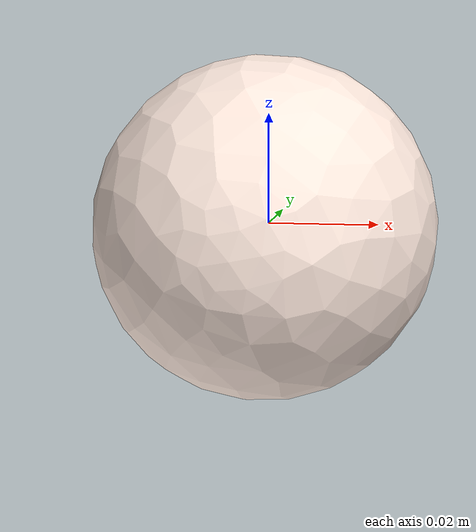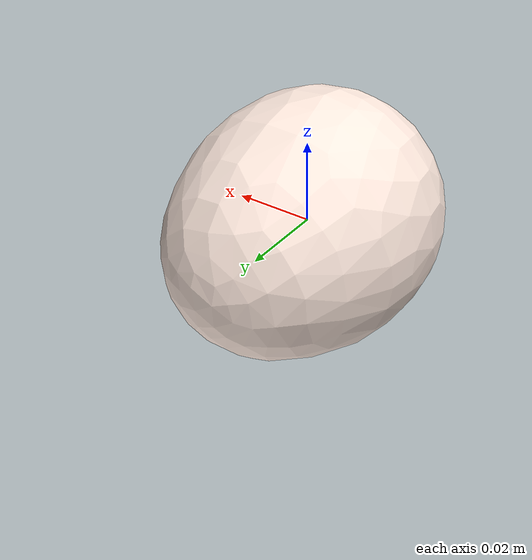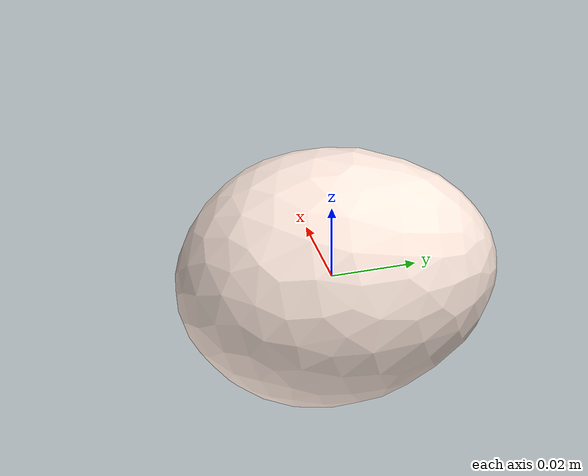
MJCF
<mujoco model="Egg_5">
  <compiler autolimits="true" boundmass="0.01" angle="radian"/>
  <default>
    <default class="/">
      <default class="__VISUAL_MJT__">
        <geom contype="0" conaffinity="0" group="0"/>
      </default>
      <default class="__STRUCTURAL_MJT__">
        <geom contype="8" conaffinity="15" group="4" friction="0.90000000000000002 0.90000000000000002 0.001" solref="0.025000000000000001 1" solimp="0.998 0.998 0.001"/>
      </default>
      <default class="__DYNAMIC_MJT__">
        <geom contype="1" conaffinity="15" group="4" friction="0.90000000000000002 0.90000000000000002 0.001" solref="0.025000000000000001 1" solimp="0.998 0.998 0.001"/>
      </default>
    </default>
  </default>
  <asset>
    <material name="material_Egg5_Mat" class="/" specular="0.5" shininess="0.5" rgba="1 0.91935489999999997 0.875 1"/>
    <mesh name="Egg_5_egg_5" class="/" file="Egg_5_egg_5/Egg_5_egg_5.obj" scale="1 1 1"/>
  </asset>
  <worldbody>
    <body name="Egg_5">
      <joint name="Egg_5_free" class="/" type="free" pos="0 0 0" axis="0 0 1" stiffness="0" range="0 0" armature="0" damping="0.10000000000000001" frictionloss="0"/>
      <body name="Egg_5_egg_5" pos="-0 0 -0.0001" quat="1 0 0 0">
        <geom name="Egg_5_egg_5" class="__VISUAL_MJT__" type="mesh" material="material_Egg5_Mat" shellinertia="true" mesh="Egg_5_egg_5"/>
        <geom name="Egg_5_PrimitiveCollider_0" class="__DYNAMIC_MJT__" type="capsule" size="0.027119878679513931 0.010864976793527603" rgba="0 1 0 1" pos="-0 0 0" quat="0.70710678118654757 0.70710678118654746 0 0"/>
      </body>
    </body>
  </worldbody>
</mujoco>
